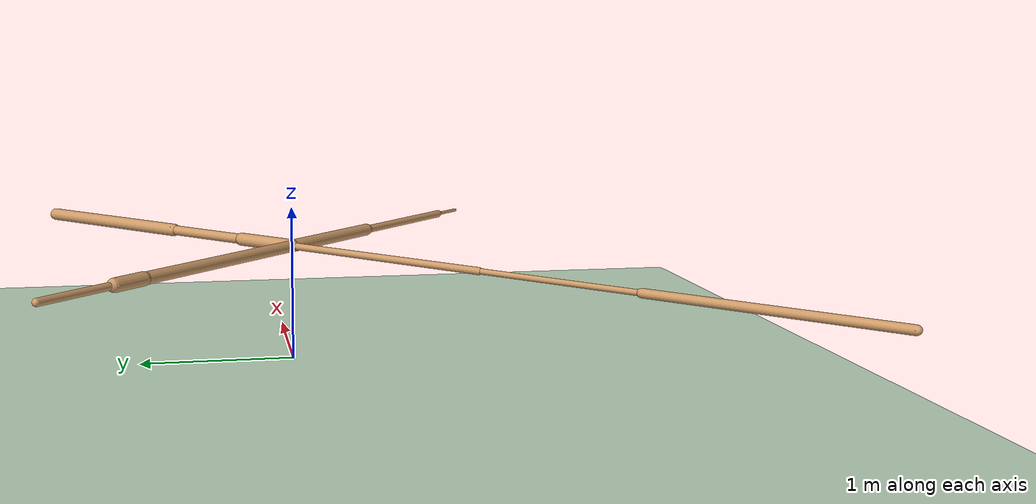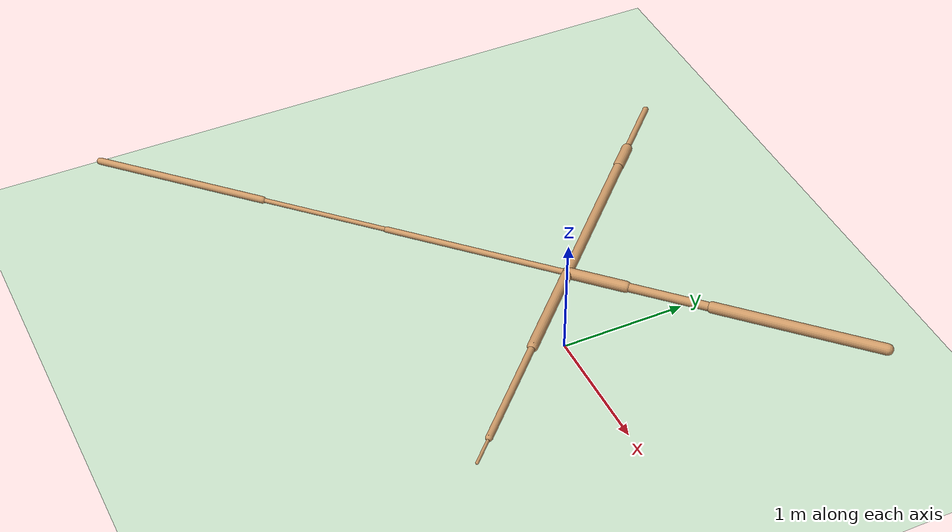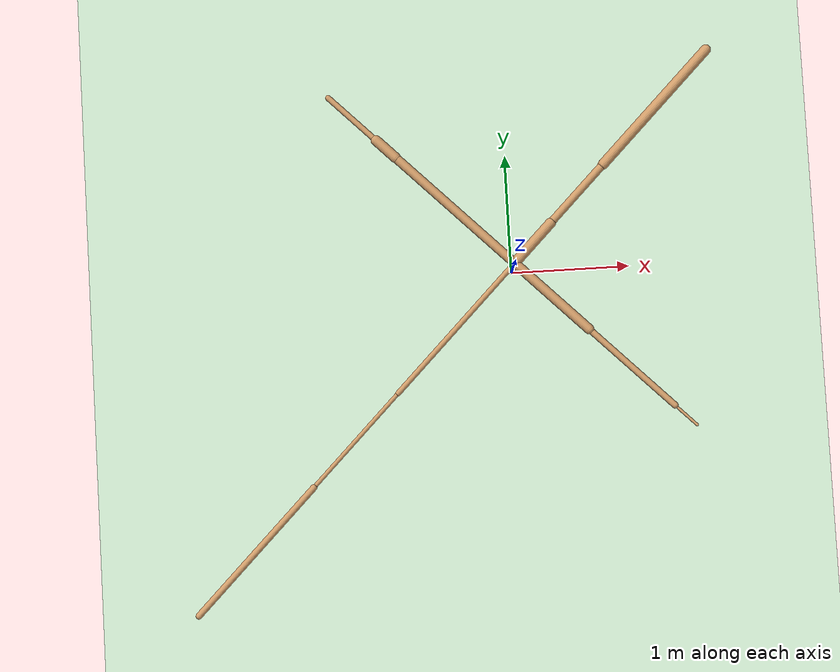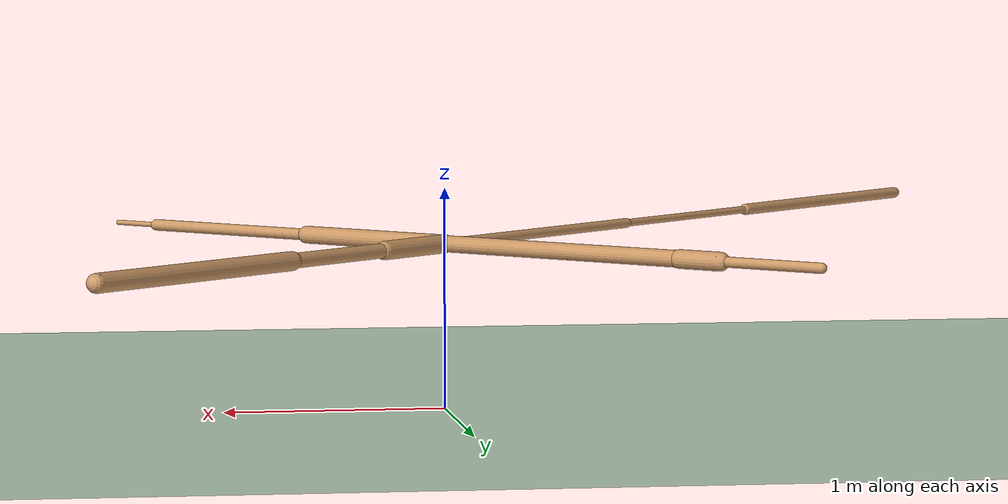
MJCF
<mujoco model="ant">
  <compiler angle="degree" coordinate="local" inertiafromgeom="true" />
  <option integrator="RK4" timestep="0.01" />
  <custom>
    <numeric data="0.0 0.0 0.55 1.0 0.0 0.0 0.0 0.0 1.0 0.0 -1.0 0.0 -1.0 0.0 1.0" name="init_qpos" />
  </custom>
  <default>
    <joint armature="1" damping="1" limited="true" />
    <geom conaffinity="0" condim="3" density="5.0" friction="1 0.5 0.5" margin="0.01" rgba="0.8 0.6 0.4 1" />
  </default>
  <asset>
    <texture builtin="gradient" height="100" rgb1="1 1 1" rgb2="0 0 0" type="skybox" width="100" />
    <texture builtin="flat" height="1278" mark="cross" markrgb="1 1 1" name="texgeom" random="0.01" rgb1="0.8 0.6 0.4" rgb2="0.8 0.6 0.4" type="cube" width="127" />
    <texture builtin="checker" height="100" name="texplane" rgb1="0 0 0" rgb2="0.8 0.8 0.8" type="2d" width="100" />
    <material name="MatPlane" reflectance="0.5" shininess="1" specular="1" texrepeat="60 60" texture="texplane" />
    <material name="geom" texture="texgeom" texuniform="true" />
  </asset>
  <worldbody>
    <light cutoff="100" diffuse="1 1 1" dir="-0 0 -1.3" directional="true" exponent="1" pos="0 0 1.3" specular=".1 .1 .1" />
    <geom conaffinity="1" condim="3" material="MatPlane" name="floor" pos="0 0 0" rgba="0.8 0.9 0.8 1" size="40 40 40" type="plane" />
    <body name="torso" pos="0 0 0.75">
      <camera name="track" mode="trackcom" pos="0 -11 5" xyaxes="1 0 0 0 0.5 1" />
      <geom name="torso_geom" pos="0 0 0" size="0.03282148391008377" type="sphere" />
      <joint armature="0" damping="0" limited="false" margin="0.01" name="root" pos="0 0 0" type="free" />
      <body name="front_left_leg" pos="0 0 0">
        <geom fromto="0 0 0 0.30950209498405457 0.30950209498405457 0" name="aux_1_geom" size="0.042539652436971664" type="capsule" />
        <body name="aux_1" pos="0.30950209498405457 0.30950209498405457 0">
          <joint axis="0 0 1" name="hip_1" pos="0.0 0.0 0.0" range="-30 30" type="hinge" />
          <geom fromto="0 0 0 0.45288532972335815 0.45288532972335815 0" name="left_leg_geom" size="0.033185601234436035" type="capsule" />
          <body name="left_leg_geom_aux" pos="0.45288532972335815 0.45288532972335815 0">
            <joint axis="-1 1 0" name="ankle_1" pos="0.0 0.0 0.0" range="30 70" type="hinge" />
            <geom fromto="0 0 0 0.8916619420051575 0.8916619420051575 0" name="left_ankle_geom" size="0.0425211526453495" type="capsule" />
          </body>
        </body>
      </body>
      <body name="front_right_leg" pos="0 0 0">
        <geom fromto="0 0 0 -0.9106076955795288 0.9106076955795288 0" name="aux_2_geom" size="0.03778570145368576" type="capsule" />
        <body name="aux_2" pos="-0.9106076955795288 0.9106076955795288 0">
          <joint axis="0 0 1" name="hip_2" pos="0.0 0.0 0.0" range="-30 30" type="hinge" />
          <geom fromto="0 0 0 -0.15280187129974365 0.15280187129974365 0" name="right_leg_geom" size="0.04216364771127701" type="capsule" />
          <body name="right_leg_geom_aux" pos="-0.15280187129974365 0.15280187129974365 0">
            <joint axis="1 1 0" name="ankle_2" pos="0.0 0.0 0.0" range="-70 -30" type="hinge" />
            <geom fromto="0 0 0 -0.3680124878883362 0.3680124878883362 0" name="right_ankle_geom" size="0.023369425907731056" type="capsule" />
          </body>
        </body>
      </body>
      <body name="back_leg" pos="0 0 0">
        <geom fromto="0 0 0 -0.9962217211723328 -0.9962217211723328 0" name="aux_3_geom" size="0.022558454424142838" type="capsule" />
        <body name="aux_3" pos="-0.9962217211723328 -0.9962217211723328 0">
          <joint axis="0 0 1" name="hip_3" pos="0.0 0.0 0.0" range="-30 30" type="hinge" />
          <geom fromto="0 0 0 -0.7103815674781799 -0.7103815674781799 0" name="back_leg_geom" size="0.017398670315742493" type="capsule" />
          <body name="back_leg_geom_aux" pos="-0.7103815674781799 -0.7103815674781799 0">
            <joint axis="-1 1 0" name="ankle_3" pos="0.0 0.0 0.0" range="-70 -30" type="hinge" />
            <geom fromto="0 0 0 -0.963693380355835 -0.963693380355835 0" name="third_ankle_geom" size="0.02671796642243862" type="capsule" />
          </body>
        </body>
      </body>
      <body name="right_back_leg" pos="0 0 0">
        <geom fromto="0 0 0 0.5673936605453491 -0.5673936605453491 0" name="aux_4_geom" size="0.04026997461915016" type="capsule" />
        <body name="aux_4" pos="0.5673936605453491 -0.5673936605453491 0">
          <joint axis="0 0 1" name="hip_4" pos="0.0 0.0 0.0" range="-30 30" type="hinge" />
          <geom fromto="0 0 0 0.6485283970832825 -0.6485283970832825 0" name="rightback_leg_geom" size="0.026288293302059174" type="capsule" />
          <body name="rightback_leg_geom_aux" pos="0.6485283970832825 -0.6485283970832825 0">
            <joint axis="1 1 0" name="ankle_4" pos="0.0 0.0 0.0" range="30 70" type="hinge" />
            <geom fromto="0 0 0 0.16730350255966187 -0.16730350255966187 0" name="fourth_ankle_geom" size="0.011687499471008778" type="capsule" />
          </body>
        </body>
      </body>
    </body>
  </worldbody>
  <actuator>
    <motor ctrllimited="true" ctrlrange="-1.0 1.0" joint="hip_4" gear="150" />
    <motor ctrllimited="true" ctrlrange="-1.0 1.0" joint="ankle_4" gear="150" />
    <motor ctrllimited="true" ctrlrange="-1.0 1.0" joint="hip_1" gear="150" />
    <motor ctrllimited="true" ctrlrange="-1.0 1.0" joint="ankle_1" gear="150" />
    <motor ctrllimited="true" ctrlrange="-1.0 1.0" joint="hip_2" gear="150" />
    <motor ctrllimited="true" ctrlrange="-1.0 1.0" joint="ankle_2" gear="150" />
    <motor ctrllimited="true" ctrlrange="-1.0 1.0" joint="hip_3" gear="150" />
    <motor ctrllimited="true" ctrlrange="-1.0 1.0" joint="ankle_3" gear="150" />
  </actuator>
</mujoco>
